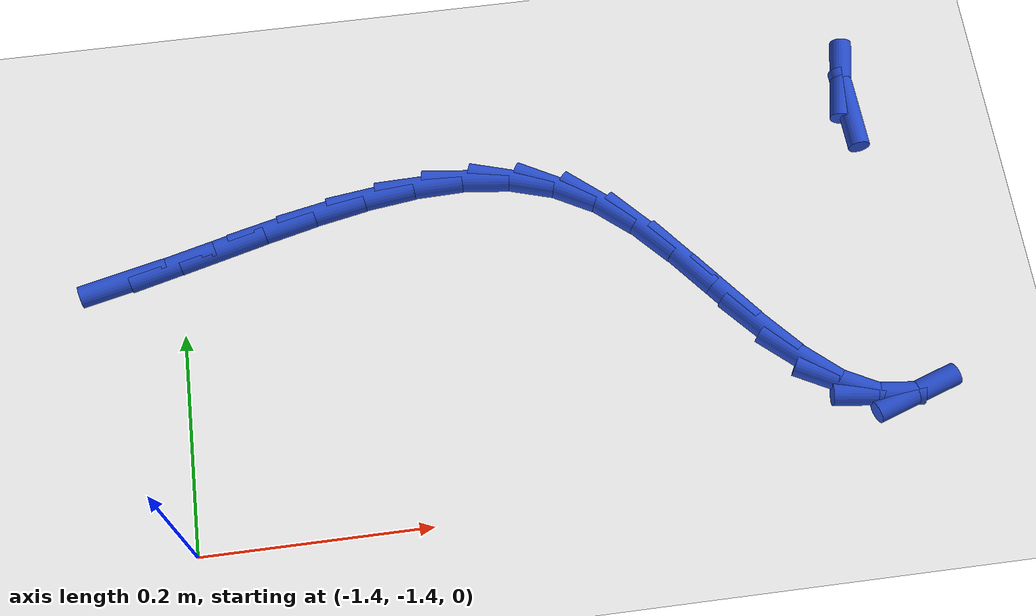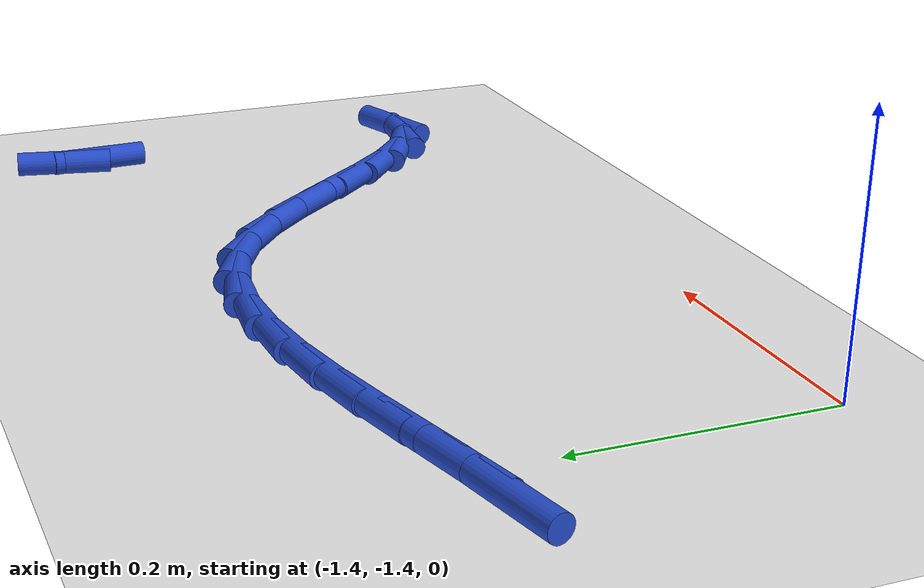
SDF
<sdf version="1.6">
 <world name="default">
  <model name="ground_plane">
   <static>1</static>
   <link name="link">
    <collision name="collision">
     <geometry><plane><normal>0 0 1</normal><size>100 100</size></plane></geometry>
     <surface><friction><ode><mu>100</mu><mu2>50</mu2></ode></friction></surface>
    </collision>
    <visual name="visual">
     <cast_shadows>0</cast_shadows>
     <geometry><plane><normal>0 0 1</normal><size>100 100</size></plane></geometry>
     <material>
      <script><uri>file://media/materials/scripts/gazebo.material</uri><name>Gazebo/WhiteGlow</name></script>
     </material>
    </visual>
   </link>
  </model>
  <model name="line">
   <link name="link_190">
    <pose>-1.4502968632398237 -1.1461401698170666 0.01 0 1.57 0.22563186722645226</pose>
    <collision name="collision">
     <geometry><cylinder><radius>0.01</radius><length>0.08</length></cylinder></geometry>
    </collision>
    <visual name="visual">
     <material>
      <script><name>Gazebo/Blue</name><uri>file://media/materials/scripts/gazebo.material</uri></script>
     </material>
     <geometry><cylinder><radius>0.01</radius><length>0.08</length></cylinder></geometry>
    </visual>
   </link>
   <link name="link_191">
    <pose>-1.406445523871183 -1.1360745143734303 0.01 0 1.57 0.2549182231429059</pose>
    <collision name="collision">
     <geometry><cylinder><radius>0.01</radius><length>0.08</length></cylinder></geometry>
    </collision>
    <visual name="visual">
     <material>
      <script><name>Gazebo/Blue</name><uri>file://media/materials/scripts/gazebo.material</uri></script>
     </material>
     <geometry><cylinder><radius>0.01</radius><length>0.08</length></cylinder></geometry>
    </visual>
   </link>
   <link name="link_192">
    <pose>-1.3614727384644278 -1.1243551713634203 0.01 0 1.57 0.2596067252974007</pose>
    <collision name="collision">
     <geometry><cylinder><radius>0.01</radius><length>0.08</length></cylinder></geometry>
    </collision>
    <visual name="visual">
     <material>
      <script><name>Gazebo/Blue</name><uri>file://media/materials/scripts/gazebo.material</uri></script>
     </material>
     <geometry><cylinder><radius>0.01</radius><length>0.08</length></cylinder></geometry>
    </visual>
   </link>
   <link name="link_193">
    <pose>-1.3158599916783336 -1.1122404039228606 0.01 0 1.57 0.2410498933427681</pose>
    <collision name="collision">
     <geometry><cylinder><radius>0.01</radius><length>0.08</length></cylinder></geometry>
    </collision>
    <visual name="visual">
     <material>
      <script><name>Gazebo/Blue</name><uri>file://media/materials/scripts/gazebo.material</uri></script>
     </material>
     <geometry><cylinder><radius>0.01</radius><length>0.08</length></cylinder></geometry>
    </visual>
   </link>
   <link name="link_194">
    <pose>-1.2700887681716773 -1.1009884751875763 0.01 0 1.57 0.19826672451142877</pose>
    <collision name="collision">
     <geometry><cylinder><radius>0.01</radius><length>0.08</length></cylinder></geometry>
    </collision>
    <visual name="visual">
     <material>
      <script><name>Gazebo/Blue</name><uri>file://media/materials/scripts/gazebo.material</uri></script>
     </material>
     <geometry><cylinder><radius>0.01</radius><length>0.08</length></cylinder></geometry>
    </visual>
   </link>
   <link name="link_195">
    <pose>-1.2246405526032351 -1.0918576482933915 0.01 0 1.57 0.1281245211150792</pose>
    <collision name="collision">
     <geometry><cylinder><radius>0.01</radius><length>0.08</length></cylinder></geometry>
    </collision>
    <visual name="visual">
     <material>
      <script><name>Gazebo/Blue</name><uri>file://media/materials/scripts/gazebo.material</uri></script>
     </material>
     <geometry><cylinder><radius>0.01</radius><length>0.08</length></cylinder></geometry>
    </visual>
   </link>
   <link name="link_196">
    <pose>-1.1799968296317844 -1.0861061863761314 0.01 0 1.57 0.025683735634333512</pose>
    <collision name="collision">
     <geometry><cylinder><radius>0.01</radius><length>0.08</length></cylinder></geometry>
    </collision>
    <visual name="visual">
     <material>
      <script><name>Gazebo/Blue</name><uri>file://media/materials/scripts/gazebo.material</uri></script>
     </material>
     <geometry><cylinder><radius>0.01</radius><length>0.08</length></cylinder></geometry>
    </visual>
   </link>
   <link name="link_197">
    <pose>-1.1366390839161011 -1.0849923525716205 0.01 0 1.57 -0.11447744468980599</pose>
    <collision name="collision">
     <geometry><cylinder><radius>0.01</radius><length>0.08</length></cylinder></geometry>
    </collision>
    <visual name="visual">
     <material>
      <script><name>Gazebo/Blue</name><uri>file://media/materials/scripts/gazebo.material</uri></script>
     </material>
     <geometry><cylinder><radius>0.01</radius><length>0.08</length></cylinder></geometry>
    </visual>
   </link>
   <link name="link_198">
    <pose>-1.0950488001149623 -1.0897744100156834 0.01 0 1.57 -0.2945743006681432</pose>
    <collision name="collision">
     <geometry><cylinder><radius>0.01</radius><length>0.08</length></cylinder></geometry>
    </collision>
    <visual name="visual">
     <material>
      <script><name>Gazebo/Blue</name><uri>file://media/materials/scripts/gazebo.material</uri></script>
     </material>
     <geometry><cylinder><radius>0.01</radius><length>0.08</length></cylinder></geometry>
    </visual>
   </link>
   <link name="link_199">
    <pose>-1.055707462887144 -1.1017106218441448 0.01 0 1.57 -0.5071419550889249</pose>
    <collision name="collision">
     <geometry><cylinder><radius>0.01</radius><length>0.08</length></cylinder></geometry>
    </collision>
    <visual name="visual">
     <material>
      <script><name>Gazebo/Blue</name><uri>file://media/materials/scripts/gazebo.material</uri></script>
     </material>
     <geometry><cylinder><radius>0.01</radius><length>0.08</length></cylinder></geometry>
    </visual>
   </link>
   <link name="link_200">
    <pose>-1.0190948518984744 -1.1220530431770679 0.01 0 1.57 -0.705769777718031</pose>
    <collision name="collision">
     <geometry><cylinder><radius>0.01</radius><length>0.08</length></cylinder></geometry>
    </collision>
    <visual name="visual">
     <material>
      <script><name>Gazebo/Blue</name><uri>file://media/materials/scripts/gazebo.material</uri></script>
     </material>
     <geometry><cylinder><radius>0.01</radius><length>0.08</length></cylinder></geometry>
    </visual>
   </link>
   <link name="link_201">
    <pose>-0.9853494116999166 -1.1508109006673062 0.01 0 1.57 -0.8301540387453782</pose>
    <collision name="collision">
     <geometry><cylinder><radius>0.01</radius><length>0.08</length></cylinder></geometry>
    </collision>
    <visual name="visual">
     <material>
      <script><name>Gazebo/Blue</name><uri>file://media/materials/scripts/gazebo.material</uri></script>
     </material>
     <geometry><cylinder><radius>0.01</radius><length>0.08</length></cylinder></geometry>
    </visual>
   </link>
   <link name="link_202">
    <pose>-0.9538576760409386 -1.1852556535707923 0.01 0 1.57 -0.8907879876293113</pose>
    <collision name="collision">
     <geometry><cylinder><radius>0.01</radius><length>0.08</length></cylinder></geometry>
    </collision>
    <visual name="visual">
     <material>
      <script><name>Gazebo/Blue</name><uri>file://media/materials/scripts/gazebo.material</uri></script>
     </material>
     <geometry><cylinder><radius>0.01</radius><length>0.08</length></cylinder></geometry>
    </visual>
   </link>
   <link name="link_203">
    <pose>-0.923905919619064 -1.2222937099124962 0.01 0 1.57 -0.8978052985500304</pose>
    <collision name="collision">
     <geometry><cylinder><radius>0.01</radius><length>0.08</length></cylinder></geometry>
    </collision>
    <visual name="visual">
     <material>
      <script><name>Gazebo/Blue</name><uri>file://media/materials/scripts/gazebo.material</uri></script>
     </material>
     <geometry><cylinder><radius>0.01</radius><length>0.08</length></cylinder></geometry>
    </visual>
   </link>
   <link name="link_204">
    <pose>-0.8947804171318158 -1.2588314777173883 0.01 0 1.57 -0.8487592113759538</pose>
    <collision name="collision">
     <geometry><cylinder><radius>0.01</radius><length>0.08</length></cylinder></geometry>
    </collision>
    <visual name="visual">
     <material>
      <script><name>Gazebo/Blue</name><uri>file://media/materials/scripts/gazebo.material</uri></script>
     </material>
     <geometry><cylinder><radius>0.01</radius><length>0.08</length></cylinder></geometry>
    </visual>
   </link>
   <link name="link_205">
    <pose>-0.8657674432767184 -1.2917753650104398 0.01 0 1.57 -0.7253715528200485</pose>
    <collision name="collision">
     <geometry><cylinder><radius>0.01</radius><length>0.08</length></cylinder></geometry>
    </collision>
    <visual name="visual">
     <material>
      <script><name>Gazebo/Blue</name><uri>file://media/materials/scripts/gazebo.material</uri></script>
     </material>
     <geometry><cylinder><radius>0.01</radius><length>0.08</length></cylinder></geometry>
    </visual>
   </link>
   <link name="link_206">
    <pose>-0.8361532727512947 -1.3180317798166206 0.01 0 1.57 -0.4894495792386268</pose>
    <collision name="collision">
     <geometry><cylinder><radius>0.01</radius><length>0.08</length></cylinder></geometry>
    </collision>
    <visual name="visual">
     <material>
      <script><name>Gazebo/Blue</name><uri>file://media/materials/scripts/gazebo.material</uri></script>
     </material>
     <geometry><cylinder><radius>0.01</radius><length>0.08</length></cylinder></geometry>
    </visual>
   </link>
   <link name="link_207">
    <pose>-0.8052241802530682 -1.3345071301609006 0.01 0 1.57 -0.108820257145342</pose>
    <collision name="collision">
     <geometry><cylinder><radius>0.01</radius><length>0.08</length></cylinder></geometry>
    </collision>
    <visual name="visual">
     <material>
      <script><name>Gazebo/Blue</name><uri>file://media/materials/scripts/gazebo.material</uri></script>
     </material>
     <geometry><cylinder><radius>0.01</radius><length>0.08</length></cylinder></geometry>
    </visual>
   </link>
   <link name="link_208">
    <pose>-0.7722664404795626 -1.3381078240682511 0.01 0 1.57 0.33103989492489844</pose>
    <collision name="collision">
     <geometry><cylinder><radius>0.01</radius><length>0.08</length></cylinder></geometry>
    </collision>
    <visual name="visual">
     <material>
      <script><name>Gazebo/Blue</name><uri>file://media/materials/scripts/gazebo.material</uri></script>
     </material>
     <geometry><cylinder><radius>0.01</radius><length>0.08</length></cylinder></geometry>
    </visual>
   </link>
   <link name="link_217">
    <pose>-0.7726801262136997 -1.0569564506006752 0.01 0 1.57 -1.530928489538293</pose>
    <collision name="collision">
     <geometry><cylinder><radius>0.01</radius><length>0.08</length></cylinder></geometry>
    </collision>
    <visual name="visual">
     <material>
      <script><name>Gazebo/Blue</name><uri>file://media/materials/scripts/gazebo.material</uri></script>
     </material>
     <geometry><cylinder><radius>0.01</radius><length>0.08</length></cylinder></geometry>
    </visual>
   </link>
   <link name="link_218">
    <pose>-0.773906832268084 -1.0262034390798347 0.01 0 1.57 1.372692387464897</pose>
    <collision name="collision">
     <geometry><cylinder><radius>0.01</radius><length>0.08</length></cylinder></geometry>
    </collision>
    <visual name="visual">
     <material>
      <script><name>Gazebo/Blue</name><uri>file://media/materials/scripts/gazebo.material</uri></script>
     </material>
     <geometry><cylinder><radius>0.01</radius><length>0.08</length></cylinder></geometry>
    </visual>
   </link>
  </model>
 </world>
</sdf>
